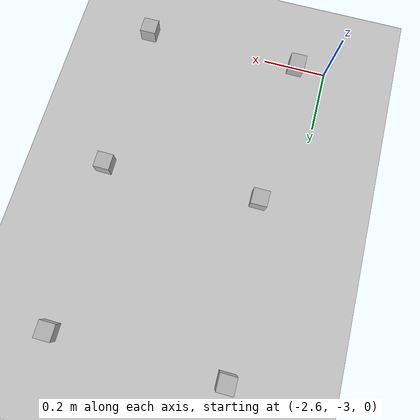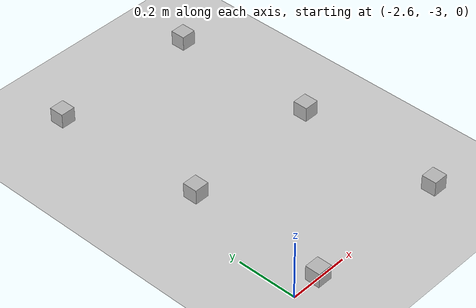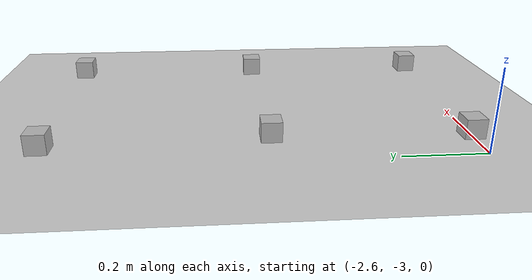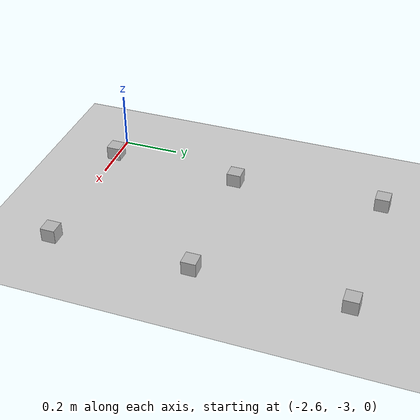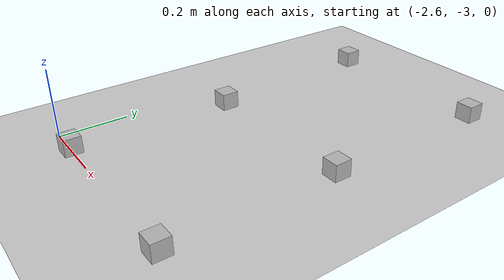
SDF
<sdf version="1.4">
 <world name="default">
  <model name="ground_plane">
   <static>1</static>
   <link name="link">
    <collision name="collision">
     <geometry><plane><normal>0 0 1</normal><size>100 100</size></plane></geometry>
     <surface><friction><ode><mu>100</mu><mu2>50</mu2></ode></friction></surface>
    </collision>
    <visual name="visual">
     <cast_shadows>0</cast_shadows>
     <geometry><plane><normal>0 0 1</normal><size>100 100</size></plane></geometry>
     <material>
      <script><uri>file://media/materials/scripts/gazebo.material</uri><name>Gazebo/Grey</name></script>
     </material>
    </visual>
    <velocity_decay><linear>0</linear><angular>0</angular></velocity_decay>
   </link>
  </model>
  <model name="at0_59">
   <static>1</static>
   <link name="link">
    <pose>0 0 0.025 0 -0 0</pose>
    <inertial>
     <mass>0.1</mass>
     <inertia><ixx>4e-05</ixx><ixy>0</ixy><ixz>0</ixz><iyy>4e-05</iyy><iyz>0</iyz><izz>4e-05</izz></inertia>
    </inertial>
    <visual name="visual">
     <transparency>0.1</transparency>
     <geometry><box><size>0.05 0.05 0.05</size></box></geometry>
     <material>
      <script>
       <uri>model://at0/materials/scripts</uri>
       <uri>model://at0/materials/textures</uri>
       <name>at0/Diffuse</name>
      </script>
     </material>
    </visual>
    <collision name="collision">
     <pose>0 0 -0.0125 0 -0 0</pose>
     <geometry><box><size>0.05 0.05 0.025</size></box></geometry>
     <surface><friction><ode><mu>0.8</mu><mu2>0.7</mu2></ode></friction></surface>
    </collision>
    <velocity_decay><linear>0</linear><angular>0</angular></velocity_decay>
   </link>
   <pose>-2.51498 -2 0 0 -0 0</pose>
  </model>
  <model name="at0_60">
   <static>1</static>
   <link name="link">
    <pose>0 0 0.025 0 -0 0</pose>
    <inertial>
     <mass>0.1</mass>
     <inertia><ixx>4e-05</ixx><ixy>0</ixy><ixz>0</ixz><iyy>4e-05</iyy><iyz>0</iyz><izz>4e-05</izz></inertia>
    </inertial>
    <visual name="visual">
     <transparency>0.1</transparency>
     <geometry><box><size>0.05 0.05 0.05</size></box></geometry>
     <material>
      <script>
       <uri>model://at0/materials/scripts</uri>
       <uri>model://at0/materials/textures</uri>
       <name>at0/Diffuse</name>
      </script>
     </material>
    </visual>
    <collision name="collision">
     <pose>0 0 -0.0125 0 -0 0</pose>
     <geometry><box><size>0.05 0.05 0.025</size></box></geometry>
     <surface><friction><ode><mu>0.8</mu><mu2>0.7</mu2></ode></friction></surface>
    </collision>
    <velocity_decay><linear>0</linear><angular>0</angular></velocity_decay>
   </link>
   <pose>-2 -2 0 0 -0 0</pose>
  </model>
  <model name="at0_103">
   <static>1</static>
   <link name="link">
    <pose>0 0 0.025 0 -0 0</pose>
    <inertial>
     <mass>0.1</mass>
     <inertia><ixx>4e-05</ixx><ixy>0</ixy><ixz>0</ixz><iyy>4e-05</iyy><iyz>0</iyz><izz>4e-05</izz></inertia>
    </inertial>
    <visual name="visual">
     <transparency>0.1</transparency>
     <geometry><box><size>0.05 0.05 0.05</size></box></geometry>
     <material>
      <script>
       <uri>model://at0/materials/scripts</uri>
       <uri>model://at0/materials/textures</uri>
       <name>at0/Diffuse</name>
      </script>
     </material>
    </visual>
    <collision name="collision">
     <pose>0 0 -0.0125 0 -0 0</pose>
     <geometry><box><size>0.05 0.05 0.025</size></box></geometry>
     <surface><friction><ode><mu>0.8</mu><mu2>0.7</mu2></ode></friction></surface>
    </collision>
    <velocity_decay><linear>0</linear><angular>0</angular></velocity_decay>
   </link>
   <pose>-2.48703 -2.52393 0 0 -0 0</pose>
  </model>
  <model name="at0_129">
   <static>1</static>
   <link name="link">
    <pose>0 0 0.025 0 -0 0</pose>
    <inertial>
     <mass>0.1</mass>
     <inertia><ixx>4e-05</ixx><ixy>0</ixy><ixz>0</ixz><iyy>4e-05</iyy><iyz>0</iyz><izz>4e-05</izz></inertia>
    </inertial>
    <visual name="visual">
     <transparency>0.1</transparency>
     <geometry><box><size>0.05 0.05 0.05</size></box></geometry>
     <material>
      <script>
       <uri>model://at0/materials/scripts</uri>
       <uri>model://at0/materials/textures</uri>
       <name>at0/Diffuse</name>
      </script>
     </material>
    </visual>
    <collision name="collision">
     <pose>0 0 -0.0125 0 -0 0</pose>
     <geometry><box><size>0.05 0.05 0.025</size></box></geometry>
     <surface><friction><ode><mu>0.8</mu><mu2>0.7</mu2></ode></friction></surface>
    </collision>
    <velocity_decay><linear>0</linear><angular>0</angular></velocity_decay>
   </link>
   <pose>-2 -2.51052 0 0 -0 0</pose>
  </model>
  <model name="at0_187">
   <static>1</static>
   <link name="link">
    <pose>0 0 0.025 0 -0 0</pose>
    <inertial>
     <mass>0.1</mass>
     <inertia><ixx>4e-05</ixx><ixy>0</ixy><ixz>0</ixz><iyy>4e-05</iyy><iyz>0</iyz><izz>4e-05</izz></inertia>
    </inertial>
    <visual name="visual">
     <transparency>0.1</transparency>
     <geometry><box><size>0.05 0.05 0.05</size></box></geometry>
     <material>
      <script>
       <uri>model://at0/materials/scripts</uri>
       <uri>model://at0/materials/textures</uri>
       <name>at0/Diffuse</name>
      </script>
     </material>
    </visual>
    <collision name="collision">
     <pose>0 0 -0.0125 0 -0 0</pose>
     <geometry><box><size>0.05 0.05 0.025</size></box></geometry>
     <surface><friction><ode><mu>0.8</mu><mu2>0.7</mu2></ode></friction></surface>
    </collision>
    <velocity_decay><linear>0</linear><angular>0</angular></velocity_decay>
   </link>
   <pose>-2.50278 -3 0 0 -0 0</pose>
  </model>
  <model name="at0_188">
   <static>1</static>
   <link name="link">
    <pose>0 0 0.025 0 -0 0</pose>
    <inertial>
     <mass>0.1</mass>
     <inertia><ixx>4e-05</ixx><ixy>0</ixy><ixz>0</ixz><iyy>4e-05</iyy><iyz>0</iyz><izz>4e-05</izz></inertia>
    </inertial>
    <visual name="visual">
     <transparency>0.1</transparency>
     <geometry><box><size>0.05 0.05 0.05</size></box></geometry>
     <material>
      <script>
       <uri>model://at0/materials/scripts</uri>
       <uri>model://at0/materials/textures</uri>
       <name>at0/Diffuse</name>
      </script>
     </material>
    </visual>
    <collision name="collision">
     <pose>0 0 -0.0125 0 -0 0</pose>
     <geometry><box><size>0.05 0.05 0.025</size></box></geometry>
     <surface><friction><ode><mu>0.8</mu><mu2>0.7</mu2></ode></friction></surface>
    </collision>
    <velocity_decay><linear>0</linear><angular>0</angular></velocity_decay>
   </link>
   <pose>-2 -3 0 0 -0 0</pose>
  </model>
 </world>
</sdf>
